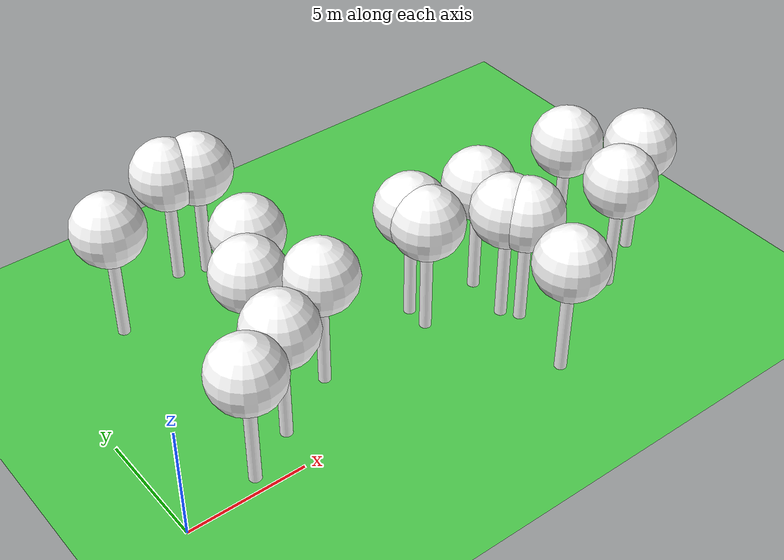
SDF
<sdf version="1.8">
 <world name="forest_world">
  <model name="tree_simple495">
   <static>1</static>
   <link name="link">
    <pose>0 0 0.1 0 -0 0</pose>
    <collision name="collision_trunk">
     <pose>0 0 2 0 -0 0</pose>
     <geometry><cylinder><radius>0.25</radius><length>4</length></cylinder></geometry>
    </collision>
    <collision name="collision_treetop">
     <pose>0 0 5.2 0 -0 0</pose>
     <geometry><sphere><radius>1.5</radius></sphere></geometry>
    </collision>
    <visual name="trunk_495">
     <pose>0 0 2 0 -0 0</pose>
     <geometry><cylinder><radius>0.25</radius><length>4</length></cylinder></geometry>
     <material>
      <ambient>0.5 0.5 0.5 1</ambient>
      <diffuse>1.0 1.0 1.0 1</diffuse>
      <specular>0.0 0.0 0.0 1</specular>
      <pbr>
       <metal>
        <albedo_map>file://textures/tree_simple_trunk.jpg</albedo_map>
        <metalness>0.0</metalness>
        <roughness>0.8</roughness>
       </metal>
      </pbr>
     </material>
    </visual>
    <visual name="treetop_495">
     <pose>0 0 5.2 0 -0 0</pose>
     <geometry><sphere><radius>1.5</radius></sphere></geometry>
     <material>
      <ambient>0.5 0.5 0.5 1</ambient>
      <diffuse>1.0 1.0 1.0 1</diffuse>
      <specular>0.0 0.0 0.0 1</specular>
      <pbr>
       <metal>
        <albedo_map>file://textures/tree_simple_treetop.jpg</albedo_map>
        <metalness>0.0</metalness>
        <roughness>0.9</roughness>
       </metal>
      </pbr>
     </material>
    </visual>
   </link>
   <pose>13.2663357304 3.23501246435 0 0 -0 0</pose>
  </model>
  <model name="tree_simple486">
   <static>1</static>
   <link name="link">
    <pose>0 0 0.1 0 -0 0</pose>
    <collision name="collision_trunk">
     <pose>0 0 2 0 -0 0</pose>
     <geometry><cylinder><radius>0.25</radius><length>4</length></cylinder></geometry>
    </collision>
    <collision name="collision_treetop">
     <pose>0 0 5.2 0 -0 0</pose>
     <geometry><sphere><radius>1.5</radius></sphere></geometry>
    </collision>
    <visual name="trunk_486">
     <pose>0 0 2 0 -0 0</pose>
     <geometry><cylinder><radius>0.25</radius><length>4</length></cylinder></geometry>
     <material>
      <ambient>0.5 0.5 0.5 1</ambient>
      <diffuse>1.0 1.0 1.0 1</diffuse>
      <specular>0.0 0.0 0.0 1</specular>
      <pbr>
       <metal>
        <albedo_map>file://textures/tree_simple_trunk.jpg</albedo_map>
        <metalness>0.0</metalness>
        <roughness>0.8</roughness>
       </metal>
      </pbr>
     </material>
    </visual>
    <visual name="treetop_486">
     <pose>0 0 5.2 0 -0 0</pose>
     <geometry><sphere><radius>1.5</radius></sphere></geometry>
     <material>
      <ambient>0.5 0.5 0.5 1</ambient>
      <diffuse>1.0 1.0 1.0 1</diffuse>
      <specular>0.0 0.0 0.0 1</specular>
      <pbr>
       <metal>
        <albedo_map>file://textures/tree_simple_treetop.jpg</albedo_map>
        <metalness>0.0</metalness>
        <roughness>0.9</roughness>
       </metal>
      </pbr>
     </material>
    </visual>
   </link>
   <pose>8.18281559396 11.6524151823 0 0 -0 0</pose>
  </model>
  <model name="tree_simple431">
   <static>1</static>
   <link name="link">
    <pose>0 0 0.1 0 -0 0</pose>
    <collision name="collision_trunk">
     <pose>0 0 2 0 -0 0</pose>
     <geometry><cylinder><radius>0.25</radius><length>4</length></cylinder></geometry>
    </collision>
    <collision name="collision_treetop">
     <pose>0 0 5.2 0 -0 0</pose>
     <geometry><sphere><radius>1.5</radius></sphere></geometry>
    </collision>
    <visual name="trunk_431">
     <pose>0 0 2 0 -0 0</pose>
     <geometry><cylinder><radius>0.25</radius><length>4</length></cylinder></geometry>
     <material>
      <ambient>0.5 0.5 0.5 1</ambient>
      <diffuse>1.0 1.0 1.0 1</diffuse>
      <specular>0.0 0.0 0.0 1</specular>
      <pbr>
       <metal>
        <albedo_map>file://textures/tree_simple_trunk.jpg</albedo_map>
        <metalness>0.0</metalness>
        <roughness>0.8</roughness>
       </metal>
      </pbr>
     </material>
    </visual>
    <visual name="treetop_431">
     <pose>0 0 5.2 0 -0 0</pose>
     <geometry><sphere><radius>1.5</radius></sphere></geometry>
     <material>
      <ambient>0.5 0.5 0.5 1</ambient>
      <diffuse>1.0 1.0 1.0 1</diffuse>
      <specular>0.0 0.0 0.0 1</specular>
      <pbr>
       <metal>
        <albedo_map>file://textures/tree_simple_treetop.jpg</albedo_map>
        <metalness>0.0</metalness>
        <roughness>0.9</roughness>
       </metal>
      </pbr>
     </material>
    </visual>
   </link>
   <pose>21.2091972338 3.93897030512 0 0 -0 0</pose>
  </model>
  <model name="tree_simple421">
   <static>1</static>
   <link name="link">
    <pose>0 0 0.1 0 -0 0</pose>
    <collision name="collision_trunk">
     <pose>0 0 2 0 -0 0</pose>
     <geometry><cylinder><radius>0.25</radius><length>4</length></cylinder></geometry>
    </collision>
    <collision name="collision_treetop">
     <pose>0 0 5.2 0 -0 0</pose>
     <geometry><sphere><radius>1.5</radius></sphere></geometry>
    </collision>
    <visual name="trunk_421">
     <pose>0 0 2 0 -0 0</pose>
     <geometry><cylinder><radius>0.25</radius><length>4</length></cylinder></geometry>
     <material>
      <ambient>0.5 0.5 0.5 1</ambient>
      <diffuse>1.0 1.0 1.0 1</diffuse>
      <specular>0.0 0.0 0.0 1</specular>
      <pbr>
       <metal>
        <albedo_map>file://textures/tree_simple_trunk.jpg</albedo_map>
        <metalness>0.0</metalness>
        <roughness>0.8</roughness>
       </metal>
      </pbr>
     </material>
    </visual>
    <visual name="treetop_421">
     <pose>0 0 5.2 0 -0 0</pose>
     <geometry><sphere><radius>1.5</radius></sphere></geometry>
     <material>
      <ambient>0.5 0.5 0.5 1</ambient>
      <diffuse>1.0 1.0 1.0 1</diffuse>
      <specular>0.0 0.0 0.0 1</specular>
      <pbr>
       <metal>
        <albedo_map>file://textures/tree_simple_treetop.jpg</albedo_map>
        <metalness>0.0</metalness>
        <roughness>0.9</roughness>
       </metal>
      </pbr>
     </material>
    </visual>
   </link>
   <pose>7.02492588621 12.0559728025 0 0 -0 0</pose>
  </model>
  <model name="tree_simple350">
   <static>1</static>
   <link name="link">
    <pose>0 0 0.1 0 -0 0</pose>
    <collision name="collision_trunk">
     <pose>0 0 2 0 -0 0</pose>
     <geometry><cylinder><radius>0.25</radius><length>4</length></cylinder></geometry>
    </collision>
    <collision name="collision_treetop">
     <pose>0 0 5.2 0 -0 0</pose>
     <geometry><sphere><radius>1.5</radius></sphere></geometry>
    </collision>
    <visual name="trunk_350">
     <pose>0 0 2 0 -0 0</pose>
     <geometry><cylinder><radius>0.25</radius><length>4</length></cylinder></geometry>
     <material>
      <ambient>0.5 0.5 0.5 1</ambient>
      <diffuse>1.0 1.0 1.0 1</diffuse>
      <specular>0.0 0.0 0.0 1</specular>
      <pbr>
       <metal>
        <albedo_map>file://textures/tree_simple_trunk.jpg</albedo_map>
        <metalness>0.0</metalness>
        <roughness>0.8</roughness>
       </metal>
      </pbr>
     </material>
    </visual>
    <visual name="treetop_350">
     <pose>0 0 5.2 0 -0 0</pose>
     <geometry><sphere><radius>1.5</radius></sphere></geometry>
     <material>
      <ambient>0.5 0.5 0.5 1</ambient>
      <diffuse>1.0 1.0 1.0 1</diffuse>
      <specular>0.0 0.0 0.0 1</specular>
      <pbr>
       <metal>
        <albedo_map>file://textures/tree_simple_treetop.jpg</albedo_map>
        <metalness>0.0</metalness>
        <roughness>0.9</roughness>
       </metal>
      </pbr>
     </material>
    </visual>
   </link>
   <pose>5.40258361507 1.7380066323 0 0 -0 0</pose>
  </model>
  <model name="tree_simple346">
   <static>1</static>
   <link name="link">
    <pose>0 0 0.1 0 -0 0</pose>
    <collision name="collision_trunk">
     <pose>0 0 2 0 -0 0</pose>
     <geometry><cylinder><radius>0.25</radius><length>4</length></cylinder></geometry>
    </collision>
    <collision name="collision_treetop">
     <pose>0 0 5.2 0 -0 0</pose>
     <geometry><sphere><radius>1.5</radius></sphere></geometry>
    </collision>
    <visual name="trunk_346">
     <pose>0 0 2 0 -0 0</pose>
     <geometry><cylinder><radius>0.25</radius><length>4</length></cylinder></geometry>
     <material>
      <ambient>0.5 0.5 0.5 1</ambient>
      <diffuse>1.0 1.0 1.0 1</diffuse>
      <specular>0.0 0.0 0.0 1</specular>
      <pbr>
       <metal>
        <albedo_map>file://textures/tree_simple_trunk.jpg</albedo_map>
        <metalness>0.0</metalness>
        <roughness>0.8</roughness>
       </metal>
      </pbr>
     </material>
    </visual>
    <visual name="treetop_346">
     <pose>0 0 5.2 0 -0 0</pose>
     <geometry><sphere><radius>1.5</radius></sphere></geometry>
     <material>
      <ambient>0.5 0.5 0.5 1</ambient>
      <diffuse>1.0 1.0 1.0 1</diffuse>
      <specular>0.0 0.0 0.0 1</specular>
      <pbr>
       <metal>
        <albedo_map>file://textures/tree_simple_treetop.jpg</albedo_map>
        <metalness>0.0</metalness>
        <roughness>0.9</roughness>
       </metal>
      </pbr>
     </material>
    </visual>
   </link>
   <pose>6.18558583868 4.91340003373 0 0 -0 0</pose>
  </model>
  <model name="tree_simple315">
   <static>1</static>
   <link name="link">
    <pose>0 0 0.1 0 -0 0</pose>
    <collision name="collision_trunk">
     <pose>0 0 2 0 -0 0</pose>
     <geometry><cylinder><radius>0.25</radius><length>4</length></cylinder></geometry>
    </collision>
    <collision name="collision_treetop">
     <pose>0 0 5.2 0 -0 0</pose>
     <geometry><sphere><radius>1.5</radius></sphere></geometry>
    </collision>
    <visual name="trunk_315">
     <pose>0 0 2 0 -0 0</pose>
     <geometry><cylinder><radius>0.25</radius><length>4</length></cylinder></geometry>
     <material>
      <ambient>0.5 0.5 0.5 1</ambient>
      <diffuse>1.0 1.0 1.0 1</diffuse>
      <specular>0.0 0.0 0.0 1</specular>
      <pbr>
       <metal>
        <albedo_map>file://textures/tree_simple_trunk.jpg</albedo_map>
        <metalness>0.0</metalness>
        <roughness>0.8</roughness>
       </metal>
      </pbr>
     </material>
    </visual>
    <visual name="treetop_315">
     <pose>0 0 5.2 0 -0 0</pose>
     <geometry><sphere><radius>1.5</radius></sphere></geometry>
     <material>
      <ambient>0.5 0.5 0.5 1</ambient>
      <diffuse>1.0 1.0 1.0 1</diffuse>
      <specular>0.0 0.0 0.0 1</specular>
      <pbr>
       <metal>
        <albedo_map>file://textures/tree_simple_treetop.jpg</albedo_map>
        <metalness>0.0</metalness>
        <roughness>0.9</roughness>
       </metal>
      </pbr>
     </material>
    </visual>
   </link>
   <pose>20.9855205965 0.626463942169 0 0 -0 0</pose>
  </model>
  <model name="tree_simple314">
   <static>1</static>
   <link name="link">
    <pose>0 0 0.1 0 -0 0</pose>
    <collision name="collision_trunk">
     <pose>0 0 2 0 -0 0</pose>
     <geometry><cylinder><radius>0.25</radius><length>4</length></cylinder></geometry>
    </collision>
    <collision name="collision_treetop">
     <pose>0 0 5.2 0 -0 0</pose>
     <geometry><sphere><radius>1.5</radius></sphere></geometry>
    </collision>
    <visual name="trunk_314">
     <pose>0 0 2 0 -0 0</pose>
     <geometry><cylinder><radius>0.25</radius><length>4</length></cylinder></geometry>
     <material>
      <ambient>0.5 0.5 0.5 1</ambient>
      <diffuse>1.0 1.0 1.0 1</diffuse>
      <specular>0.0 0.0 0.0 1</specular>
      <pbr>
       <metal>
        <albedo_map>file://textures/tree_simple_trunk.jpg</albedo_map>
        <metalness>0.0</metalness>
        <roughness>0.8</roughness>
       </metal>
      </pbr>
     </material>
    </visual>
    <visual name="treetop_314">
     <pose>0 0 5.2 0 -0 0</pose>
     <geometry><sphere><radius>1.5</radius></sphere></geometry>
     <material>
      <ambient>0.5 0.5 0.5 1</ambient>
      <diffuse>1.0 1.0 1.0 1</diffuse>
      <specular>0.0 0.0 0.0 1</specular>
      <pbr>
       <metal>
        <albedo_map>file://textures/tree_simple_treetop.jpg</albedo_map>
        <metalness>0.0</metalness>
        <roughness>0.9</roughness>
       </metal>
      </pbr>
     </material>
    </visual>
   </link>
   <pose>15.9305866253 -1.88175491407 0 0 -0 0</pose>
  </model>
  <model name="tree_simple308">
   <static>1</static>
   <link name="link">
    <pose>0 0 0.1 0 -0 0</pose>
    <collision name="collision_trunk">
     <pose>0 0 2 0 -0 0</pose>
     <geometry><cylinder><radius>0.25</radius><length>4</length></cylinder></geometry>
    </collision>
    <collision name="collision_treetop">
     <pose>0 0 5.2 0 -0 0</pose>
     <geometry><sphere><radius>1.5</radius></sphere></geometry>
    </collision>
    <visual name="trunk_308">
     <pose>0 0 2 0 -0 0</pose>
     <geometry><cylinder><radius>0.25</radius><length>4</length></cylinder></geometry>
     <material>
      <ambient>0.5 0.5 0.5 1</ambient>
      <diffuse>1.0 1.0 1.0 1</diffuse>
      <specular>0.0 0.0 0.0 1</specular>
      <pbr>
       <metal>
        <albedo_map>file://textures/tree_simple_trunk.jpg</albedo_map>
        <metalness>0.0</metalness>
        <roughness>0.8</roughness>
       </metal>
      </pbr>
     </material>
    </visual>
    <visual name="treetop_308">
     <pose>0 0 5.2 0 -0 0</pose>
     <geometry><sphere><radius>1.5</radius></sphere></geometry>
     <material>
      <ambient>0.5 0.5 0.5 1</ambient>
      <diffuse>1.0 1.0 1.0 1</diffuse>
      <specular>0.0 0.0 0.0 1</specular>
      <pbr>
       <metal>
        <albedo_map>file://textures/tree_simple_treetop.jpg</albedo_map>
        <metalness>0.0</metalness>
        <roughness>0.9</roughness>
       </metal>
      </pbr>
     </material>
    </visual>
   </link>
   <pose>3.23733276298 0.582978933188 0 0 -0 0</pose>
  </model>
  <model name="tree_simple293">
   <static>1</static>
   <link name="link">
    <pose>0 0 0.1 0 -0 0</pose>
    <collision name="collision_trunk">
     <pose>0 0 2 0 -0 0</pose>
     <geometry><cylinder><radius>0.25</radius><length>4</length></cylinder></geometry>
    </collision>
    <collision name="collision_treetop">
     <pose>0 0 5.2 0 -0 0</pose>
     <geometry><sphere><radius>1.5</radius></sphere></geometry>
    </collision>
    <visual name="trunk_293">
     <pose>0 0 2 0 -0 0</pose>
     <geometry><cylinder><radius>0.25</radius><length>4</length></cylinder></geometry>
     <material>
      <ambient>0.5 0.5 0.5 1</ambient>
      <diffuse>1.0 1.0 1.0 1</diffuse>
      <specular>0.0 0.0 0.0 1</specular>
      <pbr>
       <metal>
        <albedo_map>file://textures/tree_simple_trunk.jpg</albedo_map>
        <metalness>0.0</metalness>
        <roughness>0.8</roughness>
       </metal>
      </pbr>
     </material>
    </visual>
    <visual name="treetop_293">
     <pose>0 0 5.2 0 -0 0</pose>
     <geometry><sphere><radius>1.5</radius></sphere></geometry>
     <material>
      <ambient>0.5 0.5 0.5 1</ambient>
      <diffuse>1.0 1.0 1.0 1</diffuse>
      <specular>0.0 0.0 0.0 1</specular>
      <pbr>
       <metal>
        <albedo_map>file://textures/tree_simple_treetop.jpg</albedo_map>
        <metalness>0.0</metalness>
        <roughness>0.9</roughness>
       </metal>
      </pbr>
     </material>
    </visual>
   </link>
   <pose>23.4063524119 1.93979754522 0 0 -0 0</pose>
  </model>
  <model name="tree_simple269">
   <static>1</static>
   <link name="link">
    <pose>0 0 0.1 0 -0 0</pose>
    <collision name="collision_trunk">
     <pose>0 0 2 0 -0 0</pose>
     <geometry><cylinder><radius>0.25</radius><length>4</length></cylinder></geometry>
    </collision>
    <collision name="collision_treetop">
     <pose>0 0 5.2 0 -0 0</pose>
     <geometry><sphere><radius>1.5</radius></sphere></geometry>
    </collision>
    <visual name="trunk_269">
     <pose>0 0 2 0 -0 0</pose>
     <geometry><cylinder><radius>0.25</radius><length>4</length></cylinder></geometry>
     <material>
      <ambient>0.5 0.5 0.5 1</ambient>
      <diffuse>1.0 1.0 1.0 1</diffuse>
      <specular>0.0 0.0 0.0 1</specular>
      <pbr>
       <metal>
        <albedo_map>file://textures/tree_simple_trunk.jpg</albedo_map>
        <metalness>0.0</metalness>
        <roughness>0.8</roughness>
       </metal>
      </pbr>
     </material>
    </visual>
    <visual name="treetop_269">
     <pose>0 0 5.2 0 -0 0</pose>
     <geometry><sphere><radius>1.5</radius></sphere></geometry>
     <material>
      <ambient>0.5 0.5 0.5 1</ambient>
      <diffuse>1.0 1.0 1.0 1</diffuse>
      <specular>0.0 0.0 0.0 1</specular>
      <pbr>
       <metal>
        <albedo_map>file://textures/tree_simple_treetop.jpg</albedo_map>
        <metalness>0.0</metalness>
        <roughness>0.9</roughness>
       </metal>
      </pbr>
     </material>
    </visual>
   </link>
   <pose>3.4316618278 10.3418603378 0 0 -0 0</pose>
  </model>
  <model name="tree_simple214">
   <static>1</static>
   <link name="link">
    <pose>0 0 0.1 0 -0 0</pose>
    <collision name="collision_trunk">
     <pose>0 0 2 0 -0 0</pose>
     <geometry><cylinder><radius>0.25</radius><length>4</length></cylinder></geometry>
    </collision>
    <collision name="collision_treetop">
     <pose>0 0 5.2 0 -0 0</pose>
     <geometry><sphere><radius>1.5</radius></sphere></geometry>
    </collision>
    <visual name="trunk_214">
     <pose>0 0 2 0 -0 0</pose>
     <geometry><cylinder><radius>0.25</radius><length>4</length></cylinder></geometry>
     <material>
      <ambient>0.5 0.5 0.5 1</ambient>
      <diffuse>1.0 1.0 1.0 1</diffuse>
      <specular>0.0 0.0 0.0 1</specular>
      <pbr>
       <metal>
        <albedo_map>file://textures/tree_simple_trunk.jpg</albedo_map>
        <metalness>0.0</metalness>
        <roughness>0.8</roughness>
       </metal>
      </pbr>
     </material>
    </visual>
    <visual name="treetop_214">
     <pose>0 0 5.2 0 -0 0</pose>
     <geometry><sphere><radius>1.5</radius></sphere></geometry>
     <material>
      <ambient>0.5 0.5 0.5 1</ambient>
      <diffuse>1.0 1.0 1.0 1</diffuse>
      <specular>0.0 0.0 0.0 1</specular>
      <pbr>
       <metal>
        <albedo_map>file://textures/tree_simple_treetop.jpg</albedo_map>
        <metalness>0.0</metalness>
        <roughness>0.9</roughness>
       </metal>
      </pbr>
     </material>
    </visual>
   </link>
   <pose>16.4618787814 3.98227082292 0 0 -0 0</pose>
  </model>
  <model name="tree_simple145">
   <static>1</static>
   <link name="link">
    <pose>0 0 0.1 0 -0 0</pose>
    <collision name="collision_trunk">
     <pose>0 0 2 0 -0 0</pose>
     <geometry><cylinder><radius>0.25</radius><length>4</length></cylinder></geometry>
    </collision>
    <collision name="collision_treetop">
     <pose>0 0 5.2 0 -0 0</pose>
     <geometry><sphere><radius>1.5</radius></sphere></geometry>
    </collision>
    <visual name="trunk_145">
     <pose>0 0 2 0 -0 0</pose>
     <geometry><cylinder><radius>0.25</radius><length>4</length></cylinder></geometry>
     <material>
      <ambient>0.5 0.5 0.5 1</ambient>
      <diffuse>1.0 1.0 1.0 1</diffuse>
      <specular>0.0 0.0 0.0 1</specular>
      <pbr>
       <metal>
        <albedo_map>file://textures/tree_simple_trunk.jpg</albedo_map>
        <metalness>0.0</metalness>
        <roughness>0.8</roughness>
       </metal>
      </pbr>
     </material>
    </visual>
    <visual name="treetop_145">
     <pose>0 0 5.2 0 -0 0</pose>
     <geometry><sphere><radius>1.5</radius></sphere></geometry>
     <material>
      <ambient>0.5 0.5 0.5 1</ambient>
      <diffuse>1.0 1.0 1.0 1</diffuse>
      <specular>0.0 0.0 0.0 1</specular>
      <pbr>
       <metal>
        <albedo_map>file://textures/tree_simple_treetop.jpg</albedo_map>
        <metalness>0.0</metalness>
        <roughness>0.9</roughness>
       </metal>
      </pbr>
     </material>
    </visual>
   </link>
   <pose>7.53257093085 6.9864658102 0 0 -0 0</pose>
  </model>
  <model name="tree_simple81">
   <static>1</static>
   <link name="link">
    <pose>0 0 0.1 0 -0 0</pose>
    <collision name="collision_trunk">
     <pose>0 0 2 0 -0 0</pose>
     <geometry><cylinder><radius>0.25</radius><length>4</length></cylinder></geometry>
    </collision>
    <collision name="collision_treetop">
     <pose>0 0 5.2 0 -0 0</pose>
     <geometry><sphere><radius>1.5</radius></sphere></geometry>
    </collision>
    <visual name="trunk_81">
     <pose>0 0 2 0 -0 0</pose>
     <geometry><cylinder><radius>0.25</radius><length>4</length></cylinder></geometry>
     <material>
      <ambient>0.5 0.5 0.5 1</ambient>
      <diffuse>1.0 1.0 1.0 1</diffuse>
      <specular>0.0 0.0 0.0 1</specular>
      <pbr>
       <metal>
        <albedo_map>file://textures/tree_simple_trunk.jpg</albedo_map>
        <metalness>0.0</metalness>
        <roughness>0.8</roughness>
       </metal>
      </pbr>
     </material>
    </visual>
    <visual name="treetop_81">
     <pose>0 0 5.2 0 -0 0</pose>
     <geometry><sphere><radius>1.5</radius></sphere></geometry>
     <material>
      <ambient>0.5 0.5 0.5 1</ambient>
      <diffuse>1.0 1.0 1.0 1</diffuse>
      <specular>0.0 0.0 0.0 1</specular>
      <pbr>
       <metal>
        <albedo_map>file://textures/tree_simple_treetop.jpg</albedo_map>
        <metalness>0.0</metalness>
        <roughness>0.9</roughness>
       </metal>
      </pbr>
     </material>
    </visual>
   </link>
   <pose>13.3023094876 4.29219701126 0 0 -0 0</pose>
  </model>
  <model name="tree_simple74">
   <static>1</static>
   <link name="link">
    <pose>0 0 0.1 0 -0 0</pose>
    <collision name="collision_trunk">
     <pose>0 0 2 0 -0 0</pose>
     <geometry><cylinder><radius>0.25</radius><length>4</length></cylinder></geometry>
    </collision>
    <collision name="collision_treetop">
     <pose>0 0 5.2 0 -0 0</pose>
     <geometry><sphere><radius>1.5</radius></sphere></geometry>
    </collision>
    <visual name="trunk_74">
     <pose>0 0 2 0 -0 0</pose>
     <geometry><cylinder><radius>0.25</radius><length>4</length></cylinder></geometry>
     <material>
      <ambient>0.5 0.5 0.5 1</ambient>
      <diffuse>1.0 1.0 1.0 1</diffuse>
      <specular>0.0 0.0 0.0 1</specular>
      <pbr>
       <metal>
        <albedo_map>file://textures/tree_simple_trunk.jpg</albedo_map>
        <metalness>0.0</metalness>
        <roughness>0.8</roughness>
       </metal>
      </pbr>
     </material>
    </visual>
    <visual name="treetop_74">
     <pose>0 0 5.2 0 -0 0</pose>
     <geometry><sphere><radius>1.5</radius></sphere></geometry>
     <material>
      <ambient>0.5 0.5 0.5 1</ambient>
      <diffuse>1.0 1.0 1.0 1</diffuse>
      <specular>0.0 0.0 0.0 1</specular>
      <pbr>
       <metal>
        <albedo_map>file://textures/tree_simple_treetop.jpg</albedo_map>
        <metalness>0.0</metalness>
        <roughness>0.9</roughness>
       </metal>
      </pbr>
     </material>
    </visual>
   </link>
   <pose>16.1884917497 1.95365769223 0 0 -0 0</pose>
  </model>
  <model name="tree_simple66">
   <static>1</static>
   <link name="link">
    <pose>0 0 0.1 0 -0 0</pose>
    <collision name="collision_trunk">
     <pose>0 0 2 0 -0 0</pose>
     <geometry><cylinder><radius>0.25</radius><length>4</length></cylinder></geometry>
    </collision>
    <collision name="collision_treetop">
     <pose>0 0 5.2 0 -0 0</pose>
     <geometry><sphere><radius>1.5</radius></sphere></geometry>
    </collision>
    <visual name="trunk_66">
     <pose>0 0 2 0 -0 0</pose>
     <geometry><cylinder><radius>0.25</radius><length>4</length></cylinder></geometry>
     <material>
      <ambient>0.5 0.5 0.5 1</ambient>
      <diffuse>1.0 1.0 1.0 1</diffuse>
      <specular>0.0 0.0 0.0 1</specular>
      <pbr>
       <metal>
        <albedo_map>file://textures/tree_simple_trunk.jpg</albedo_map>
        <metalness>0.0</metalness>
        <roughness>0.8</roughness>
       </metal>
      </pbr>
     </material>
    </visual>
    <visual name="treetop_66">
     <pose>0 0 5.2 0 -0 0</pose>
     <geometry><sphere><radius>1.5</radius></sphere></geometry>
     <material>
      <ambient>0.5 0.5 0.5 1</ambient>
      <diffuse>1.0 1.0 1.0 1</diffuse>
      <specular>0.0 0.0 0.0 1</specular>
      <pbr>
       <metal>
        <albedo_map>file://textures/tree_simple_treetop.jpg</albedo_map>
        <metalness>0.0</metalness>
        <roughness>0.9</roughness>
       </metal>
      </pbr>
     </material>
    </visual>
   </link>
   <pose>8.20454354684 3.17713866097 0 0 -0 0</pose>
  </model>
  <model name="tree_simple48">
   <static>1</static>
   <link name="link">
    <pose>0 0 0.1 0 -0 0</pose>
    <collision name="collision_trunk">
     <pose>0 0 2 0 -0 0</pose>
     <geometry><cylinder><radius>0.25</radius><length>4</length></cylinder></geometry>
    </collision>
    <collision name="collision_treetop">
     <pose>0 0 5.2 0 -0 0</pose>
     <geometry><sphere><radius>1.5</radius></sphere></geometry>
    </collision>
    <visual name="trunk_48">
     <pose>0 0 2 0 -0 0</pose>
     <geometry><cylinder><radius>0.25</radius><length>4</length></cylinder></geometry>
     <material>
      <ambient>0.5 0.5 0.5 1</ambient>
      <diffuse>1.0 1.0 1.0 1</diffuse>
      <specular>0.0 0.0 0.0 1</specular>
      <pbr>
       <metal>
        <albedo_map>file://textures/tree_simple_trunk.jpg</albedo_map>
        <metalness>0.0</metalness>
        <roughness>0.8</roughness>
       </metal>
      </pbr>
     </material>
    </visual>
    <visual name="treetop_48">
     <pose>0 0 5.2 0 -0 0</pose>
     <geometry><sphere><radius>1.5</radius></sphere></geometry>
     <material>
      <ambient>0.5 0.5 0.5 1</ambient>
      <diffuse>1.0 1.0 1.0 1</diffuse>
      <specular>0.0 0.0 0.0 1</specular>
      <pbr>
       <metal>
        <albedo_map>file://textures/tree_simple_treetop.jpg</albedo_map>
        <metalness>0.0</metalness>
        <roughness>0.9</roughness>
       </metal>
      </pbr>
     </material>
    </visual>
   </link>
   <pose>16.6506570209 1.30699020841 0 0 -0 0</pose>
  </model>
  <model name="ground_plane">
   <static>true</static>
   <link name="link">
    <collision name="collision">
     <geometry><plane><normal>0 0 1</normal><size>250 250</size></plane></geometry>
     <surface><friction><ode><mu>1</mu><mu2>1</mu2></ode></friction></surface>
    </collision>
    <visual name="grass">
     <cast_shadows>false</cast_shadows>
     <geometry><mesh><uri>file://textures/grass_plane.dae</uri><scale>1 1 1</scale></mesh></geometry>
     <material>
      <ambient>0.2 0.6 0.2 1</ambient>
      <diffuse>0.3 0.8 0.3 1</diffuse>
      <specular>0.1 0.1 0.1 1</specular>
      <pbr>
       <metal>
        <albedo_map>file://textures/grass_seamless.jpg</albedo_map>
        <metalness>0.0</metalness>
        <roughness>0.9</roughness>
       </metal>
      </pbr>
     </material>
    </visual>
   </link>
  </model>
 </world>
</sdf>
